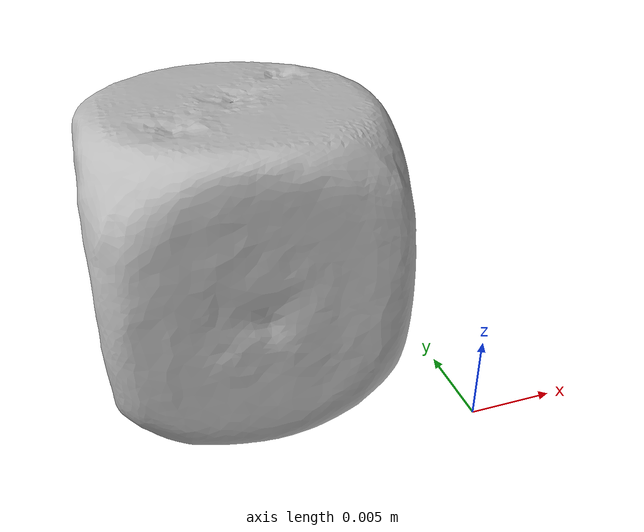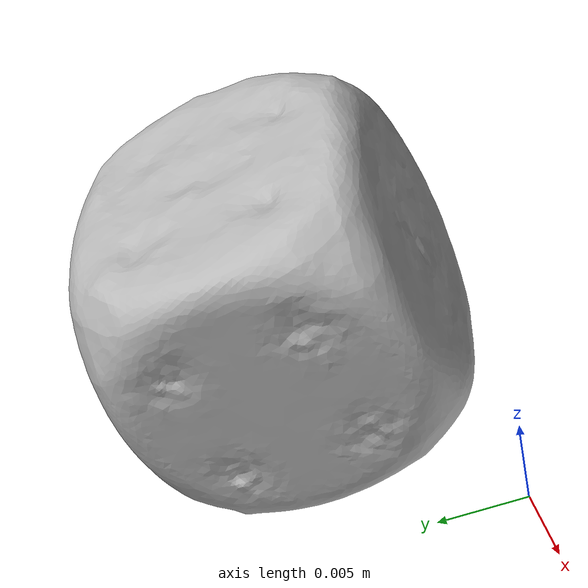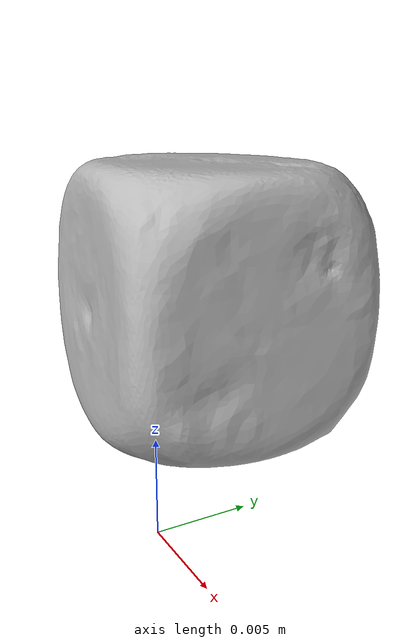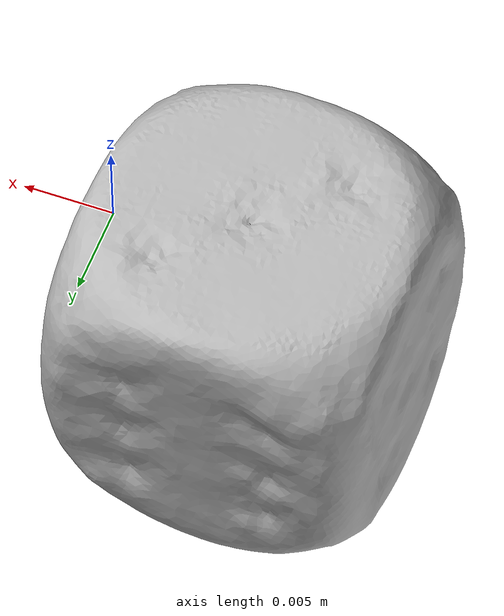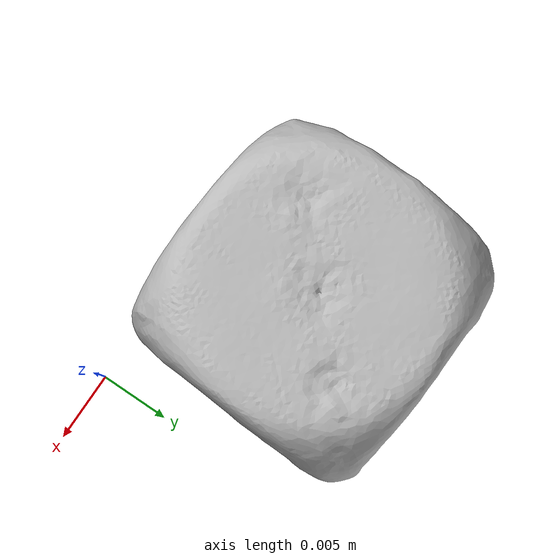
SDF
<?xml version='1.0'?>
<sdf version="1.4">
  <model name="dice">
    <static>false</static>
    <link name="link">
      <inertial>
        <pose>-0.011207378509108022 0.009163342961551291 0.008407354793330487 0.03648001627270027 -0.007934211730379474 1.3499916882079912</pose>
        <mass>4.312016842944167e-06</mass>
        <inertia>
          <ixx>1.8875564466856384e-10</ixx>
          <ixy>1.9036005882262903e-26</ixy>
          <ixz>4.847554991158686e-27</ixz>
          <iyy>1.87505671569629e-10</iyy>
          <iyz>-1.4104788331843086e-26</iyz>
          <izz>1.7750670628379932e-10</izz>
        </inertia>
      </inertial>
      <collision name="collision">
        <geometry>
          <mesh>
            <!-- Use a downsampled mesh for collisions -->
            <uri>model://062_dice/google_16k/062_dice.obj</uri>
            </mesh>
        </geometry>
        <surface>
          <friction>
            <ode>
              <mu>0.9</mu>
              <mu2>0.9</mu2>
            </ode>
          </friction>
          <contact>
            <ode>
              <kp>1000000000000.0</kp>
              <kd>1</kd>
              <min_depth>0.0001</min_depth>
              <max_vel>0.01</max_vel>
            </ode>
          </contact>
          <bounce>
            <restitution_coefficient>0.1</restitution_coefficient>
            <threshold>1000.0</threshold>
          </bounce>
        </surface>
      </collision>
      <visual name="visual">
        <geometry>
          <mesh>
            <uri>model://062_dice/google_16k/062_dice.dae</uri>
            </mesh>
        </geometry>
      </visual>
    </link>
  </model>
</sdf>
